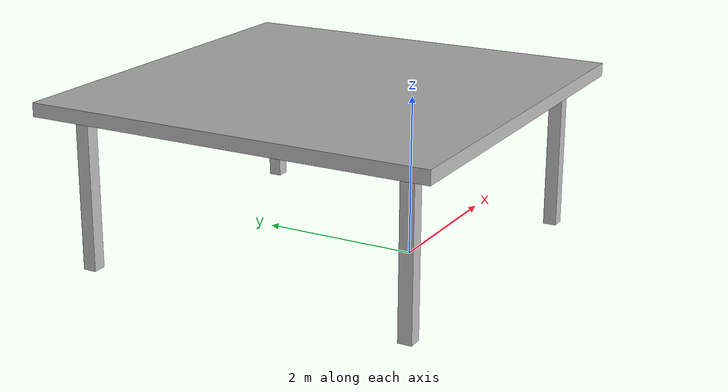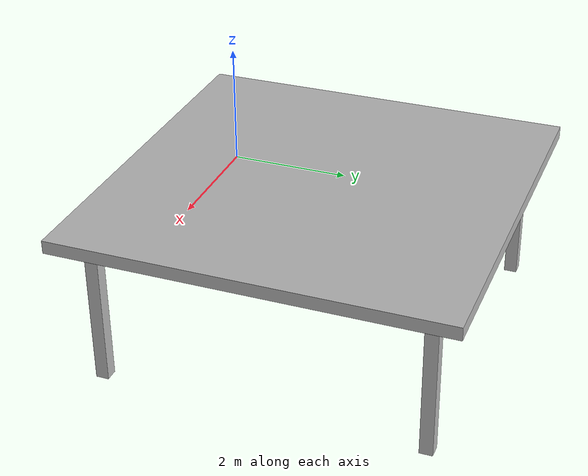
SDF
<?xml version='1.0'?>
<sdf version='1.4'>
  <model name="room">
    <link name='link_1'>
      <pose>0 0 0 0 0 0</pose>
      <inertial>
        <mass>2.390</mass>
        <inertia>
          <ixx>0.00058</ixx>
          <ixy>0</ixy>
          <ixz>0</ixz>
          <iyy>0.00058</iyy>
          <iyz>0</iyz>
          <izz>0.00019</izz>
        </inertia>
      </inertial>
      <collision name='collision'>
        <geometry>
                <box>
                  <size>.2 .2 2.4</size>
                </box>
        </geometry>
      </collision>

      <visual name='visual'>
        <geometry>
                <box>
                   <size>.2 .2 2.4</size>
                </box>
        </geometry>
      </visual>
    </link>

     <link name='link_2'>
      <pose>0 5 0 0 0 0</pose>
      <inertial>
        <mass>2.390</mass>
        <inertia>
          <ixx>0.00058</ixx>
          <ixy>0</ixy>
          <ixz>0</ixz>
          <iyy>0.00058</iyy>
          <iyz>0</iyz>
          <izz>0.00019</izz>
        </inertia>
      </inertial>
      <collision name='collision'>
        <geometry>
                <box>
                  <size>.2 .2 2.4</size>
                </box>
        </geometry>
      </collision>

      <visual name='visual'>
        <geometry>
                <box>
                   <size>.2 .2 2.4</size>
                </box>
        </geometry>
      </visual>
    </link>
     <link name='link_3'>
      <pose>5 5 0 0 0 0</pose>
      <inertial>
        <mass>2.390</mass>
        <inertia>
          <ixx>0.00058</ixx>
          <ixy>0</ixy>
          <ixz>0</ixz>
          <iyy>0.00058</iyy>
          <iyz>0</iyz>
          <izz>0.00019</izz>
        </inertia>
      </inertial>
      <collision name='collision'>
        <geometry>
                <box>
                  <size>.2 .2 2.4</size>
                </box>
        </geometry>
      </collision>

      <visual name='visual'>
        <geometry>
                <box>
                   <size>.2 .2 2.4</size>
                </box>
        </geometry>
      </visual>
    </link>
     <link name='link_4'>
      <pose>5 0 0 0 0 0</pose>
      <inertial>
        <mass>2.390</mass>
        <inertia>
          <ixx>0.00058</ixx>
          <ixy>0</ixy>
          <ixz>0</ixz>
          <iyy>0.00058</iyy>
          <iyz>0</iyz>
          <izz>0.00019</izz>
        </inertia>
      </inertial>
      <collision name='collision'>
        <geometry>
                <box>
                  <size>.2 .2 2.4</size>
                </box>
        </geometry>
      </collision>

      <visual name='visual'>
        <geometry>
                <box>
                   <size>.2 .2 2.4</size>
                </box>
        </geometry>
      </visual>
    </link>

     <link name='link'>
      <pose>2.5 2.5 1.2 0 0 0</pose>
      <collision name='collision'>
        <geometry>
                <box>
                  <size>6 6 0.2</size>
                </box>
        </geometry>
      </collision>

      <visual name='visual'>
        <geometry>
                <box>
                   <size>6 6 0.2</size>
                </box>
        </geometry>
      </visual>
    </link>

    <link name='mark_1'>
      <pose>0.8 0.8 1.10 0 0 0</pose>
      <inertial>
        <mass>0.390</mass>
        <inertia>
          <ixx>0.00058</ixx>
          <ixy>0</ixy>
          <ixz>0</ixz>
          <iyy>0.00058</iyy>
          <iyz>0</iyz>
          <izz>0.00019</izz>
        </inertia>
      </inertial>
      <collision name='collision'>
        <geometry>
                <box>
                  <size>.496 .496 .01</size>
                </box>
        </geometry>
      </collision>

      <visual name='visual'>
        <geometry>
                <box>
                  <size>.496 .496 .01</size>
                </box>
        </geometry>

        <material>
          <script>
            <uri>model://room/materials/1/scripts</uri>
            <uri>model://room/materials/1/textures</uri>
            <name>room/Diffuse1</name>
          </script>
        </material>
      </visual>
    </link>

    <joint name="camera_joint_1" type="revolute">
      <child>link_1</child>
      <parent>link</parent>
      <axis>
        <xyz>0 0 -2</xyz>
        <limit>
          <upper>0</upper>
          <lower>0</lower>
        </limit>
      </axis>
    </joint>

    <joint name="camera_joint_2" type="revolute">
      <child>link_2</child>
      <parent>link</parent>
      <axis>
        <xyz>0 0 -2</xyz>
        <limit>
          <upper>0</upper>
          <lower>0</lower>
        </limit>
      </axis>
    </joint>

    <joint name="camera_joint_3" type="revolute">
      <child>link_3</child>
      <parent>link</parent>
      <axis>
        <xyz>0 0 -2</xyz>
        <limit>
          <upper>0</upper>
          <lower>0</lower>
        </limit>
      </axis>
    </joint>

    <joint name="camera_joint_4" type="revolute">
      <child>link_4</child>
      <parent>link</parent>
      <axis>
        <xyz>0 0 -2</xyz>
        <limit>
          <upper>0</upper>
          <lower>0</lower>
        </limit>
      </axis>
    </joint>

    <joint name="mark_joint_4" type="revolute">
      <child>mark_1</child>
      <parent>link</parent>
      <axis>
        <xyz>0 0 -2</xyz>
        <limit>
          <upper>0</upper>
          <lower>0</lower>
        </limit>
      </axis>
    </joint>

  </model>
</sdf>
